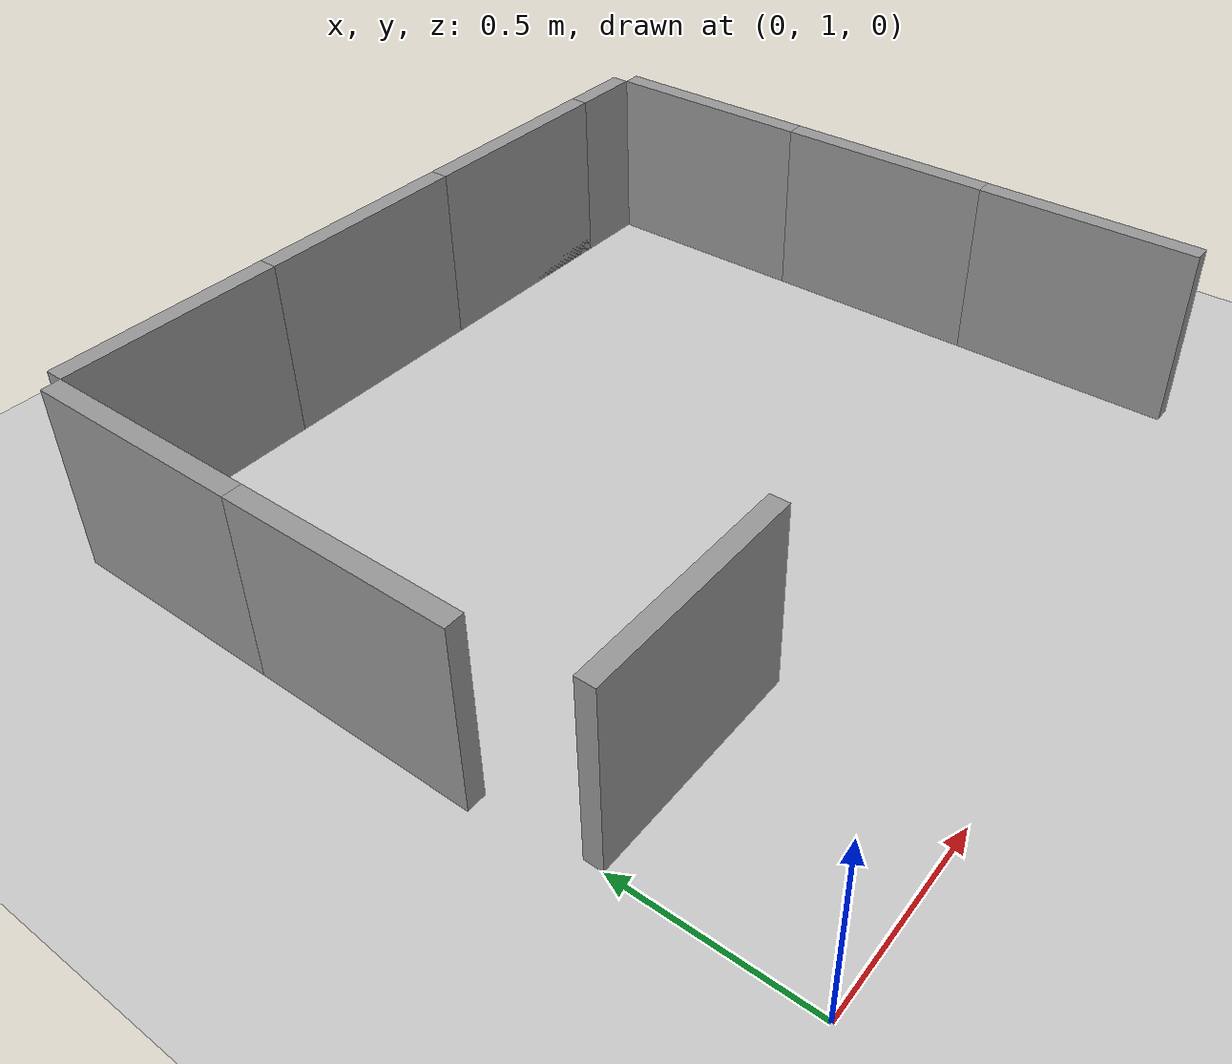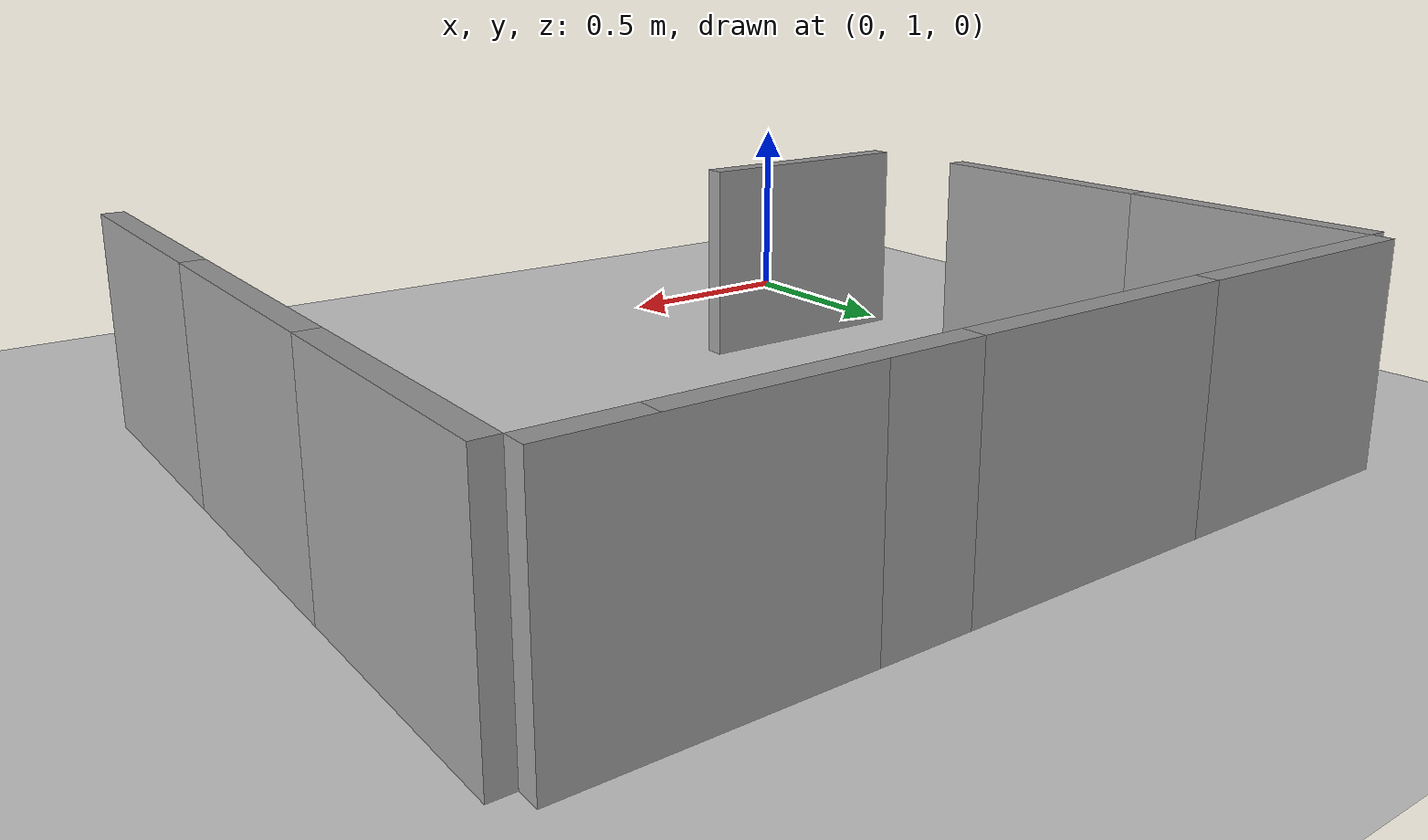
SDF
<sdf version="1.7">
 <world name="default">
  <model name="ground_plane">
   <static>1</static>
   <link name="link">
    <collision name="collision">
     <geometry><plane><normal>0 0 1</normal><size>100 100</size></plane></geometry>
     <surface>
      <contact><collide_bitmask>65535</collide_bitmask></contact>
      <friction><ode><mu>100</mu><mu2>50</mu2></ode></friction>
     </surface>
    </collision>
    <visual name="visual">
     <cast_shadows>0</cast_shadows>
     <geometry><plane><normal>0 0 1</normal><size>100 100</size></plane></geometry>
     <material>
      <script><uri>file://media/materials/scripts/gazebo.material</uri><name>Gazebo/Grey</name></script>
     </material>
    </visual>
   </link>
  </model>
  <model name="wall_unit_clone_clone_0_clone">
   <link name="link_0">
    <inertial>
     <mass>1</mass>
     <inertia>
      <ixx>0.166667</ixx>
      <ixy>0</ixy>
      <ixz>0</ixz>
      <iyy>0.166667</iyy>
      <iyz>0</iyz>
      <izz>0.166667</izz>
     </inertia>
    </inertial>
    <visual name="visual">
     <geometry><box><size>0.6 0.05 0.5</size></box></geometry>
     <material>
      <lighting>1</lighting>
      <script><uri>file://media/materials/scripts/gazebo.material</uri><name>Gazebo/Grey</name></script>
      <shader type="pixel"><normal_map>__default__</normal_map></shader>
      <ambient>0.3 0.3 0.3 1</ambient>
      <diffuse>0.7 0.7 0.7 1</diffuse>
      <specular>0.01 0.01 0.01 1</specular>
      <emissive>0 0 0 1</emissive>
     </material>
    </visual>
    <collision name="collision">
     <geometry><box><size>0.6 0.05 0.5</size></box></geometry>
     <surface>
      <friction>
       <ode><mu>1</mu><mu2>1</mu2><fdir1>0 0 0</fdir1><slip1>0</slip1><slip2>0</slip2></ode>
       <torsional>
        <coefficient>1</coefficient>
        <patch_radius>0</patch_radius>
        <surface_radius>0</surface_radius>
        <use_patch_radius>1</use_patch_radius>
        <ode><slip>0</slip></ode>
       </torsional>
      </friction>
      <bounce><restitution_coefficient>0</restitution_coefficient><threshold>1e+06</threshold></bounce>
      <contact>
       <collide_without_contact>0</collide_without_contact>
       <collide_without_contact_bitmask>1</collide_without_contact_bitmask>
       <collide_bitmask>1</collide_bitmask>
       <ode>
        <soft_cfm>0</soft_cfm>
        <soft_erp>0.2</soft_erp>
        <kp>1e+13</kp>
        <kd>1</kd>
        <max_vel>0.01</max_vel>
        <min_depth>0</min_depth>
       </ode>
       <bullet>
        <split_impulse>1</split_impulse>
        <split_impulse_penetration_threshold>-0.01</split_impulse_penetration_threshold>
        <soft_cfm>0</soft_cfm>
        <soft_erp>0.2</soft_erp>
        <kp>1e+13</kp>
        <kd>1</kd>
       </bullet>
      </contact>
     </surface>
    </collision>
   </link>
   <static>1</static>
   <pose>-0.025 2.1 0.25 0 0 -1.5708</pose>
  </model>
  <model name="wall_unit_clone_clone_0_clone_clone">
   <link name="link_0">
    <inertial>
     <mass>1</mass>
     <inertia>
      <ixx>0.166667</ixx>
      <ixy>0</ixy>
      <ixz>0</ixz>
      <iyy>0.166667</iyy>
      <iyz>0</iyz>
      <izz>0.166667</izz>
     </inertia>
    </inertial>
    <visual name="visual">
     <geometry><box><size>0.6 0.05 0.5</size></box></geometry>
     <material>
      <lighting>1</lighting>
      <script><uri>file://media/materials/scripts/gazebo.material</uri><name>Gazebo/Grey</name></script>
      <shader type="pixel"><normal_map>__default__</normal_map></shader>
      <ambient>0.3 0.3 0.3 1</ambient>
      <diffuse>0.7 0.7 0.7 1</diffuse>
      <specular>0.01 0.01 0.01 1</specular>
      <emissive>0 0 0 1</emissive>
     </material>
    </visual>
    <collision name="collision">
     <geometry><box><size>0.6 0.05 0.5</size></box></geometry>
     <surface>
      <friction>
       <ode><mu>1</mu><mu2>1</mu2><fdir1>0 0 0</fdir1><slip1>0</slip1><slip2>0</slip2></ode>
       <torsional>
        <coefficient>1</coefficient>
        <patch_radius>0</patch_radius>
        <surface_radius>0</surface_radius>
        <use_patch_radius>1</use_patch_radius>
        <ode><slip>0</slip></ode>
       </torsional>
      </friction>
      <bounce><restitution_coefficient>0</restitution_coefficient><threshold>1e+06</threshold></bounce>
      <contact>
       <collide_without_contact>0</collide_without_contact>
       <collide_without_contact_bitmask>1</collide_without_contact_bitmask>
       <collide_bitmask>1</collide_bitmask>
       <ode>
        <soft_cfm>0</soft_cfm>
        <soft_erp>0.2</soft_erp>
        <kp>1e+13</kp>
        <kd>1</kd>
        <max_vel>0.01</max_vel>
        <min_depth>0</min_depth>
       </ode>
       <bullet>
        <split_impulse>1</split_impulse>
        <split_impulse_penetration_threshold>-0.01</split_impulse_penetration_threshold>
        <soft_cfm>0</soft_cfm>
        <soft_erp>0.2</soft_erp>
        <kp>1e+13</kp>
        <kd>1</kd>
       </bullet>
      </contact>
     </surface>
    </collision>
   </link>
   <static>1</static>
   <pose>-0.025 2.7 0.25 0 0 -1.5708</pose>
  </model>
  <model name="wall_unit_clone_1">
   <link name="link_0">
    <inertial>
     <mass>1</mass>
     <inertia>
      <ixx>0.166667</ixx>
      <ixy>0</ixy>
      <ixz>0</ixz>
      <iyy>0.166667</iyy>
      <iyz>0</iyz>
      <izz>0.166667</izz>
     </inertia>
    </inertial>
    <visual name="visual">
     <geometry><box><size>0.6 0.05 0.5</size></box></geometry>
     <material>
      <lighting>1</lighting>
      <script><uri>file://media/materials/scripts/gazebo.material</uri><name>Gazebo/Grey</name></script>
      <shader type="pixel"><normal_map>__default__</normal_map></shader>
      <ambient>0.3 0.3 0.3 1</ambient>
      <diffuse>0.7 0.7 0.7 1</diffuse>
      <specular>0.01 0.01 0.01 1</specular>
      <emissive>0 0 0 1</emissive>
     </material>
    </visual>
    <collision name="collision">
     <geometry><box><size>0.6 0.05 0.5</size></box></geometry>
     <surface>
      <friction>
       <ode><mu>1</mu><mu2>1</mu2><fdir1>0 0 0</fdir1><slip1>0</slip1><slip2>0</slip2></ode>
       <torsional>
        <coefficient>1</coefficient>
        <patch_radius>0</patch_radius>
        <surface_radius>0</surface_radius>
        <use_patch_radius>1</use_patch_radius>
        <ode><slip>0</slip></ode>
       </torsional>
      </friction>
      <bounce><restitution_coefficient>0</restitution_coefficient><threshold>1e+06</threshold></bounce>
      <contact>
       <collide_without_contact>0</collide_without_contact>
       <collide_without_contact_bitmask>1</collide_without_contact_bitmask>
       <collide_bitmask>1</collide_bitmask>
       <ode>
        <soft_cfm>0</soft_cfm>
        <soft_erp>0.2</soft_erp>
        <kp>1e+13</kp>
        <kd>1</kd>
        <max_vel>0.01</max_vel>
        <min_depth>0</min_depth>
       </ode>
       <bullet>
        <split_impulse>1</split_impulse>
        <split_impulse_penetration_threshold>-0.01</split_impulse_penetration_threshold>
        <soft_cfm>0</soft_cfm>
        <soft_erp>0.2</soft_erp>
        <kp>1e+13</kp>
        <kd>1</kd>
       </bullet>
      </contact>
     </surface>
    </collision>
   </link>
   <static>1</static>
   <pose>0.3 3.025 0.25 0 -0 0</pose>
  </model>
  <model name="wall_unit_clone_1_clone">
   <link name="link_0">
    <inertial>
     <mass>1</mass>
     <inertia>
      <ixx>0.166667</ixx>
      <ixy>0</ixy>
      <ixz>0</ixz>
      <iyy>0.166667</iyy>
      <iyz>0</iyz>
      <izz>0.166667</izz>
     </inertia>
    </inertial>
    <visual name="visual">
     <geometry><box><size>0.6 0.05 0.5</size></box></geometry>
     <material>
      <lighting>1</lighting>
      <script><uri>file://media/materials/scripts/gazebo.material</uri><name>Gazebo/Grey</name></script>
      <shader type="pixel"><normal_map>__default__</normal_map></shader>
      <ambient>0.3 0.3 0.3 1</ambient>
      <diffuse>0.7 0.7 0.7 1</diffuse>
      <specular>0.01 0.01 0.01 1</specular>
      <emissive>0 0 0 1</emissive>
     </material>
    </visual>
    <collision name="collision">
     <geometry><box><size>0.6 0.05 0.5</size></box></geometry>
     <surface>
      <friction>
       <ode><mu>1</mu><mu2>1</mu2><fdir1>0 0 0</fdir1><slip1>0</slip1><slip2>0</slip2></ode>
       <torsional>
        <coefficient>1</coefficient>
        <patch_radius>0</patch_radius>
        <surface_radius>0</surface_radius>
        <use_patch_radius>1</use_patch_radius>
        <ode><slip>0</slip></ode>
       </torsional>
      </friction>
      <bounce><restitution_coefficient>0</restitution_coefficient><threshold>1e+06</threshold></bounce>
      <contact>
       <collide_without_contact>0</collide_without_contact>
       <collide_without_contact_bitmask>1</collide_without_contact_bitmask>
       <collide_bitmask>1</collide_bitmask>
       <ode>
        <soft_cfm>0</soft_cfm>
        <soft_erp>0.2</soft_erp>
        <kp>1e+13</kp>
        <kd>1</kd>
        <max_vel>0.01</max_vel>
        <min_depth>0</min_depth>
       </ode>
       <bullet>
        <split_impulse>1</split_impulse>
        <split_impulse_penetration_threshold>-0.01</split_impulse_penetration_threshold>
        <soft_cfm>0</soft_cfm>
        <soft_erp>0.2</soft_erp>
        <kp>1e+13</kp>
        <kd>1</kd>
       </bullet>
      </contact>
     </surface>
    </collision>
   </link>
   <static>1</static>
   <pose>0.9 3.025 0.25 0 -0 0</pose>
  </model>
  <model name="wall_unit_clone_1_clone_0">
   <link name="link_0">
    <inertial>
     <mass>1</mass>
     <inertia>
      <ixx>0.166667</ixx>
      <ixy>0</ixy>
      <ixz>0</ixz>
      <iyy>0.166667</iyy>
      <iyz>0</iyz>
      <izz>0.166667</izz>
     </inertia>
    </inertial>
    <visual name="visual">
     <geometry><box><size>0.6 0.05 0.5</size></box></geometry>
     <material>
      <lighting>1</lighting>
      <script><uri>file://media/materials/scripts/gazebo.material</uri><name>Gazebo/Grey</name></script>
      <shader type="pixel"><normal_map>__default__</normal_map></shader>
      <ambient>0.3 0.3 0.3 1</ambient>
      <diffuse>0.7 0.7 0.7 1</diffuse>
      <specular>0.01 0.01 0.01 1</specular>
      <emissive>0 0 0 1</emissive>
     </material>
    </visual>
    <collision name="collision">
     <geometry><box><size>0.6 0.05 0.5</size></box></geometry>
     <surface>
      <friction>
       <ode><mu>1</mu><mu2>1</mu2><fdir1>0 0 0</fdir1><slip1>0</slip1><slip2>0</slip2></ode>
       <torsional>
        <coefficient>1</coefficient>
        <patch_radius>0</patch_radius>
        <surface_radius>0</surface_radius>
        <use_patch_radius>1</use_patch_radius>
        <ode><slip>0</slip></ode>
       </torsional>
      </friction>
      <bounce><restitution_coefficient>0</restitution_coefficient><threshold>1e+06</threshold></bounce>
      <contact>
       <collide_without_contact>0</collide_without_contact>
       <collide_without_contact_bitmask>1</collide_without_contact_bitmask>
       <collide_bitmask>1</collide_bitmask>
       <ode>
        <soft_cfm>0</soft_cfm>
        <soft_erp>0.2</soft_erp>
        <kp>1e+13</kp>
        <kd>1</kd>
        <max_vel>0.01</max_vel>
        <min_depth>0</min_depth>
       </ode>
       <bullet>
        <split_impulse>1</split_impulse>
        <split_impulse_penetration_threshold>-0.01</split_impulse_penetration_threshold>
        <soft_cfm>0</soft_cfm>
        <soft_erp>0.2</soft_erp>
        <kp>1e+13</kp>
        <kd>1</kd>
       </bullet>
      </contact>
     </surface>
    </collision>
   </link>
   <static>1</static>
   <pose>1.5 3.025 0.25 0 -0 0</pose>
  </model>
  <model name="wall_unit_clone_1_clone_0_clone">
   <link name="link_0">
    <inertial>
     <mass>1</mass>
     <inertia>
      <ixx>0.166667</ixx>
      <ixy>0</ixy>
      <ixz>0</ixz>
      <iyy>0.166667</iyy>
      <iyz>0</iyz>
      <izz>0.166667</izz>
     </inertia>
    </inertial>
    <visual name="visual">
     <geometry><box><size>0.6 0.05 0.5</size></box></geometry>
     <material>
      <lighting>1</lighting>
      <script><uri>file://media/materials/scripts/gazebo.material</uri><name>Gazebo/Grey</name></script>
      <shader type="pixel"><normal_map>__default__</normal_map></shader>
      <ambient>0.3 0.3 0.3 1</ambient>
      <diffuse>0.7 0.7 0.7 1</diffuse>
      <specular>0.01 0.01 0.01 1</specular>
      <emissive>0 0 0 1</emissive>
     </material>
    </visual>
    <collision name="collision">
     <geometry><box><size>0.6 0.05 0.5</size></box></geometry>
     <surface>
      <friction>
       <ode><mu>1</mu><mu2>1</mu2><fdir1>0 0 0</fdir1><slip1>0</slip1><slip2>0</slip2></ode>
       <torsional>
        <coefficient>1</coefficient>
        <patch_radius>0</patch_radius>
        <surface_radius>0</surface_radius>
        <use_patch_radius>1</use_patch_radius>
        <ode><slip>0</slip></ode>
       </torsional>
      </friction>
      <bounce><restitution_coefficient>0</restitution_coefficient><threshold>1e+06</threshold></bounce>
      <contact>
       <collide_without_contact>0</collide_without_contact>
       <collide_without_contact_bitmask>1</collide_without_contact_bitmask>
       <collide_bitmask>1</collide_bitmask>
       <ode>
        <soft_cfm>0</soft_cfm>
        <soft_erp>0.2</soft_erp>
        <kp>1e+13</kp>
        <kd>1</kd>
        <max_vel>0.01</max_vel>
        <min_depth>0</min_depth>
       </ode>
       <bullet>
        <split_impulse>1</split_impulse>
        <split_impulse_penetration_threshold>-0.01</split_impulse_penetration_threshold>
        <soft_cfm>0</soft_cfm>
        <soft_erp>0.2</soft_erp>
        <kp>1e+13</kp>
        <kd>1</kd>
       </bullet>
      </contact>
     </surface>
    </collision>
   </link>
   <static>1</static>
   <pose>1.7 3.025 0.25 0 -0 0</pose>
  </model>
  <model name="wall_unit_clone_clone_1_clone_clone">
   <link name="link_0">
    <inertial>
     <mass>1</mass>
     <inertia>
      <ixx>0.166667</ixx>
      <ixy>0</ixy>
      <ixz>0</ixz>
      <iyy>0.166667</iyy>
      <iyz>0</iyz>
      <izz>0.166667</izz>
     </inertia>
    </inertial>
    <visual name="visual">
     <geometry><box><size>0.6 0.05 0.5</size></box></geometry>
     <material>
      <lighting>1</lighting>
      <script><uri>file://media/materials/scripts/gazebo.material</uri><name>Gazebo/Grey</name></script>
      <shader type="pixel"><normal_map>__default__</normal_map></shader>
      <ambient>0.3 0.3 0.3 1</ambient>
      <diffuse>0.7 0.7 0.7 1</diffuse>
      <specular>0.01 0.01 0.01 1</specular>
      <emissive>0 0 0 1</emissive>
     </material>
    </visual>
    <collision name="collision">
     <geometry><box><size>0.6 0.05 0.5</size></box></geometry>
     <surface>
      <friction>
       <ode><mu>1</mu><mu2>1</mu2><fdir1>0 0 0</fdir1><slip1>0</slip1><slip2>0</slip2></ode>
       <torsional>
        <coefficient>1</coefficient>
        <patch_radius>0</patch_radius>
        <surface_radius>0</surface_radius>
        <use_patch_radius>1</use_patch_radius>
        <ode><slip>0</slip></ode>
       </torsional>
      </friction>
      <bounce><restitution_coefficient>0</restitution_coefficient><threshold>1e+06</threshold></bounce>
      <contact>
       <collide_without_contact>0</collide_without_contact>
       <collide_without_contact_bitmask>1</collide_without_contact_bitmask>
       <collide_bitmask>1</collide_bitmask>
       <ode>
        <soft_cfm>0</soft_cfm>
        <soft_erp>0.2</soft_erp>
        <kp>1e+13</kp>
        <kd>1</kd>
        <max_vel>0.01</max_vel>
        <min_depth>0</min_depth>
       </ode>
       <bullet>
        <split_impulse>1</split_impulse>
        <split_impulse_penetration_threshold>-0.01</split_impulse_penetration_threshold>
        <soft_cfm>0</soft_cfm>
        <soft_erp>0.2</soft_erp>
        <kp>1e+13</kp>
        <kd>1</kd>
       </bullet>
      </contact>
     </surface>
    </collision>
   </link>
   <static>1</static>
   <pose>2.025 1.5 0.25 0 0 -1.5708</pose>
  </model>
  <model name="wall_unit_clone_clone_1_clone_clone_clone">
   <link name="link_0">
    <inertial>
     <mass>1</mass>
     <inertia>
      <ixx>0.166667</ixx>
      <ixy>0</ixy>
      <ixz>0</ixz>
      <iyy>0.166667</iyy>
      <iyz>0</iyz>
      <izz>0.166667</izz>
     </inertia>
    </inertial>
    <visual name="visual">
     <geometry><box><size>0.6 0.05 0.5</size></box></geometry>
     <material>
      <lighting>1</lighting>
      <script><uri>file://media/materials/scripts/gazebo.material</uri><name>Gazebo/Grey</name></script>
      <shader type="pixel"><normal_map>__default__</normal_map></shader>
      <ambient>0.3 0.3 0.3 1</ambient>
      <diffuse>0.7 0.7 0.7 1</diffuse>
      <specular>0.01 0.01 0.01 1</specular>
      <emissive>0 0 0 1</emissive>
     </material>
    </visual>
    <collision name="collision">
     <geometry><box><size>0.6 0.05 0.5</size></box></geometry>
     <surface>
      <friction>
       <ode><mu>1</mu><mu2>1</mu2><fdir1>0 0 0</fdir1><slip1>0</slip1><slip2>0</slip2></ode>
       <torsional>
        <coefficient>1</coefficient>
        <patch_radius>0</patch_radius>
        <surface_radius>0</surface_radius>
        <use_patch_radius>1</use_patch_radius>
        <ode><slip>0</slip></ode>
       </torsional>
      </friction>
      <bounce><restitution_coefficient>0</restitution_coefficient><threshold>1e+06</threshold></bounce>
      <contact>
       <collide_without_contact>0</collide_without_contact>
       <collide_without_contact_bitmask>1</collide_without_contact_bitmask>
       <collide_bitmask>1</collide_bitmask>
       <ode>
        <soft_cfm>0</soft_cfm>
        <soft_erp>0.2</soft_erp>
        <kp>1e+13</kp>
        <kd>1</kd>
        <max_vel>0.01</max_vel>
        <min_depth>0</min_depth>
       </ode>
       <bullet>
        <split_impulse>1</split_impulse>
        <split_impulse_penetration_threshold>-0.01</split_impulse_penetration_threshold>
        <soft_cfm>0</soft_cfm>
        <soft_erp>0.2</soft_erp>
        <kp>1e+13</kp>
        <kd>1</kd>
       </bullet>
      </contact>
     </surface>
    </collision>
   </link>
   <static>1</static>
   <pose>2.025 2.1 0.25 0 0 -1.5708</pose>
  </model>
  <model name="wall_unit_clone_clone_1_clone_clone_clone_clone">
   <link name="link_0">
    <inertial>
     <mass>1</mass>
     <inertia>
      <ixx>0.166667</ixx>
      <ixy>0</ixy>
      <ixz>0</ixz>
      <iyy>0.166667</iyy>
      <iyz>0</iyz>
      <izz>0.166667</izz>
     </inertia>
    </inertial>
    <visual name="visual">
     <geometry><box><size>0.6 0.05 0.5</size></box></geometry>
     <material>
      <lighting>1</lighting>
      <script><uri>file://media/materials/scripts/gazebo.material</uri><name>Gazebo/Grey</name></script>
      <shader type="pixel"><normal_map>__default__</normal_map></shader>
      <ambient>0.3 0.3 0.3 1</ambient>
      <diffuse>0.7 0.7 0.7 1</diffuse>
      <specular>0.01 0.01 0.01 1</specular>
      <emissive>0 0 0 1</emissive>
     </material>
    </visual>
    <collision name="collision">
     <geometry><box><size>0.6 0.05 0.5</size></box></geometry>
     <surface>
      <friction>
       <ode><mu>1</mu><mu2>1</mu2><fdir1>0 0 0</fdir1><slip1>0</slip1><slip2>0</slip2></ode>
       <torsional>
        <coefficient>1</coefficient>
        <patch_radius>0</patch_radius>
        <surface_radius>0</surface_radius>
        <use_patch_radius>1</use_patch_radius>
        <ode><slip>0</slip></ode>
       </torsional>
      </friction>
      <bounce><restitution_coefficient>0</restitution_coefficient><threshold>1e+06</threshold></bounce>
      <contact>
       <collide_without_contact>0</collide_without_contact>
       <collide_without_contact_bitmask>1</collide_without_contact_bitmask>
       <collide_bitmask>1</collide_bitmask>
       <ode>
        <soft_cfm>0</soft_cfm>
        <soft_erp>0.2</soft_erp>
        <kp>1e+13</kp>
        <kd>1</kd>
        <max_vel>0.01</max_vel>
        <min_depth>0</min_depth>
       </ode>
       <bullet>
        <split_impulse>1</split_impulse>
        <split_impulse_penetration_threshold>-0.01</split_impulse_penetration_threshold>
        <soft_cfm>0</soft_cfm>
        <soft_erp>0.2</soft_erp>
        <kp>1e+13</kp>
        <kd>1</kd>
       </bullet>
      </contact>
     </surface>
    </collision>
   </link>
   <static>1</static>
   <pose>2.025 2.7 0.25 0 0 -1.5708</pose>
  </model>
  <model name="wall_unit_clone_2">
   <link name="link_0">
    <inertial>
     <mass>1</mass>
     <inertia>
      <ixx>0.166667</ixx>
      <ixy>0</ixy>
      <ixz>0</ixz>
      <iyy>0.166667</iyy>
      <iyz>0</iyz>
      <izz>0.166667</izz>
     </inertia>
    </inertial>
    <visual name="visual">
     <geometry><box><size>0.6 0.05 0.5</size></box></geometry>
     <material>
      <lighting>1</lighting>
      <script><uri>file://media/materials/scripts/gazebo.material</uri><name>Gazebo/Grey</name></script>
      <shader type="pixel"><normal_map>__default__</normal_map></shader>
      <ambient>0.3 0.3 0.3 1</ambient>
      <diffuse>0.7 0.7 0.7 1</diffuse>
      <specular>0.01 0.01 0.01 1</specular>
      <emissive>0 0 0 1</emissive>
     </material>
    </visual>
    <collision name="collision">
     <geometry><box><size>0.6 0.05 0.5</size></box></geometry>
     <surface>
      <friction>
       <ode><mu>1</mu><mu2>1</mu2><fdir1>0 0 0</fdir1><slip1>0</slip1><slip2>0</slip2></ode>
       <torsional>
        <coefficient>1</coefficient>
        <patch_radius>0</patch_radius>
        <surface_radius>0</surface_radius>
        <use_patch_radius>1</use_patch_radius>
        <ode><slip>0</slip></ode>
       </torsional>
      </friction>
      <bounce><restitution_coefficient>0</restitution_coefficient><threshold>1e+06</threshold></bounce>
      <contact>
       <collide_without_contact>0</collide_without_contact>
       <collide_without_contact_bitmask>1</collide_without_contact_bitmask>
       <collide_bitmask>1</collide_bitmask>
       <ode>
        <soft_cfm>0</soft_cfm>
        <soft_erp>0.2</soft_erp>
        <kp>1e+13</kp>
        <kd>1</kd>
        <max_vel>0.01</max_vel>
        <min_depth>0</min_depth>
       </ode>
       <bullet>
        <split_impulse>1</split_impulse>
        <split_impulse_penetration_threshold>-0.01</split_impulse_penetration_threshold>
        <soft_cfm>0</soft_cfm>
        <soft_erp>0.2</soft_erp>
        <kp>1e+13</kp>
        <kd>1</kd>
       </bullet>
      </contact>
     </surface>
    </collision>
   </link>
   <static>1</static>
   <pose>0.3 1.525 0.25 0 -0 0</pose>
  </model>
 </world>
</sdf>
